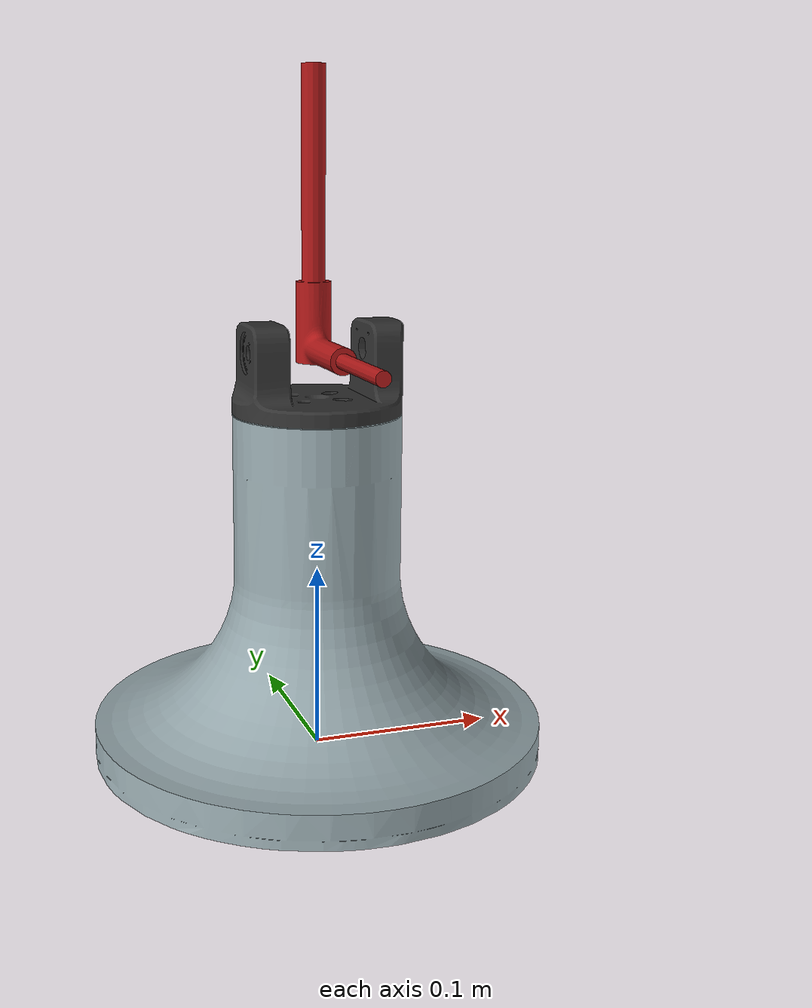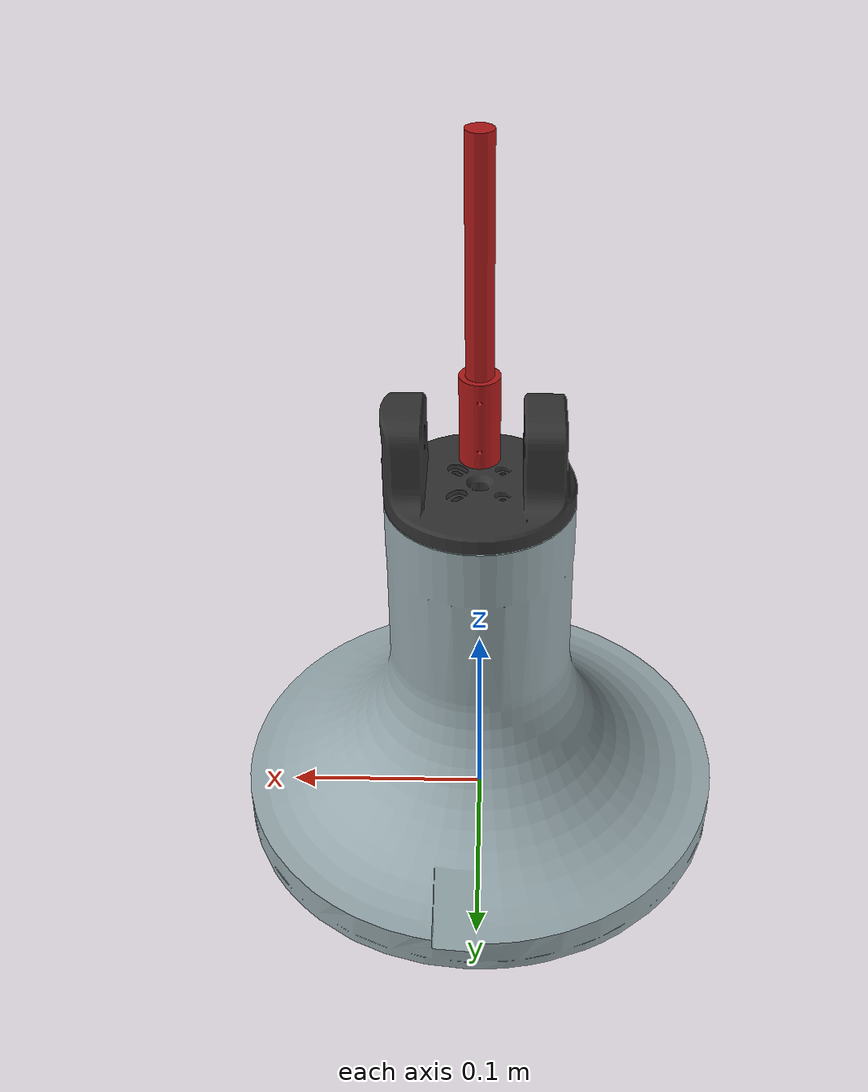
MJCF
<mujoco model="furuta_pendulum">
  <compiler angle="radian" meshdir="../meshes/"/>
  <option timestep="0.001" iterations="50" solver="Newton" tolerance="1e-10" integrator="implicit"/>

  <asset>
    <mesh name="base_link" content_type="model/stl" file="base_link.STL"/>
    <mesh name="bldc_rotor_link" content_type="model/stl" file="bldc_rotor_link.STL"/>
    <mesh name="pendulum_link" content_type="model/stl" file="pendulum_link.STL"/>
  </asset>

  <worldbody>
    <geom type="mesh" contype="0" conaffinity="0" group="1" density="2700" rgba="0.596078 0.666667 0.686275 1" mesh="base_link"/>
    <geom type="mesh" contype="0" conaffinity="0" rgba="0.596078 0.666667 0.686275 1" mesh="base_link"/>

    <body name="bldc_rotor_link" pos="0 0 0.16509" quat="1.34924e-11 3.67321e-06 1 3.67321e-06">

      <joint name="bldc_rotor_joint" pos="0 0 0" axis="0 0 1" damping="0.000378" armature="0.0000137" frictionloss="0.005"/>

      <geom type="mesh" contype="0" conaffinity="0" group="1" density="2700" rgba="0.2 0.2 0.2 1" mesh="bldc_rotor_link"/>
      <geom type="mesh" contype="0" conaffinity="0" rgba="0.2 0.2 0.2 1" mesh="bldc_rotor_link"/>

      <body name="pendulum_link" pos="0 0 -0.0547" quat="-3.67321e-06 0 0 -1">

        <joint name="pendulum_joint" pos="0 0 0" axis="0 1 0" damping="0.0006" frictionloss="0.0005" armature="0.000001" stiffness="0" ref="3.14159265"/>

        <geom type="mesh" contype="0" conaffinity="0" group="1" density="7850" rgba="0.694118 0.0980392 0.0980392 1" mesh="pendulum_link"/>

        <geom type="mesh" rgba="0.694118 0.0980392 0.0980392 1" mesh="pendulum_link"/>
      </body>
    </body>
  </worldbody>

  <actuator>
    <motor name="arm_motor" joint="bldc_rotor_joint" gear="0.306" ctrlrange="-1.5 1.5" ctrllimited="true"/>
  </actuator>

  <sensor>
    <jointpos name="rotor_angle" joint="bldc_rotor_joint"/>
    <jointvel name="rotor_vel" joint="bldc_rotor_joint"/>

    <jointpos name="pendulum_angle" joint="pendulum_joint"/>
    <jointvel name="pendulum_vel" joint="pendulum_joint"/>
  </sensor>

</mujoco>
